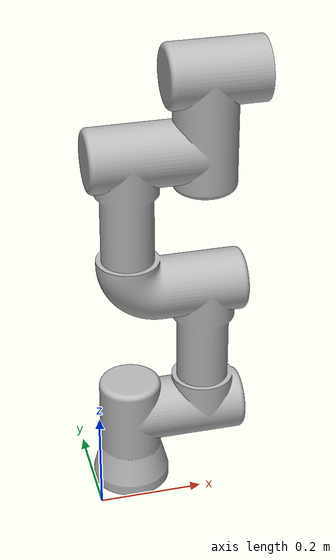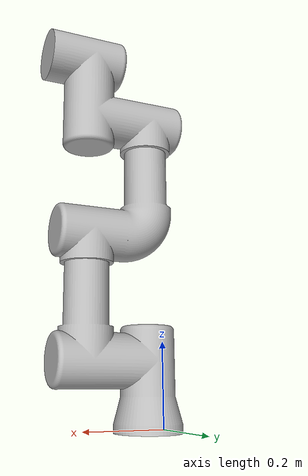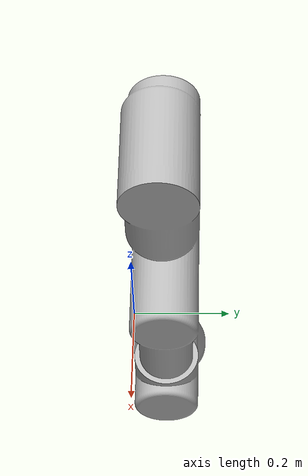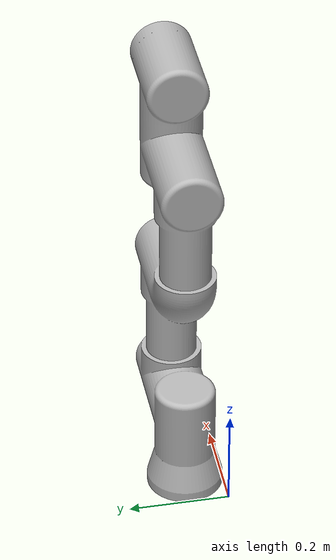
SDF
<?xml version="1.0" ?>
<sdf version="1.6">
  <model name="ur3_robot">
    <static>true</static>
    <link name="base_link">

      <visual name="visual">
        <geometry>
          <mesh>
            <uri>model://simple_ur3_robot/meshes/simple_ur3_robot.STL</uri>
            <scale>0.001 0.001 0.001</scale>
          </mesh>
        </geometry>
      </visual>

      <collision name="collision">
       <pose>0.164 0.075 0.4585 0 0 0</pose>
        <geometry>
         <box>
          <size>0.328 0.15 0.917</size> <!-- Prilagodi veličini stolca -->
         </box>
        </geometry>
       </collision>

    </link>
  </model>
</sdf>
